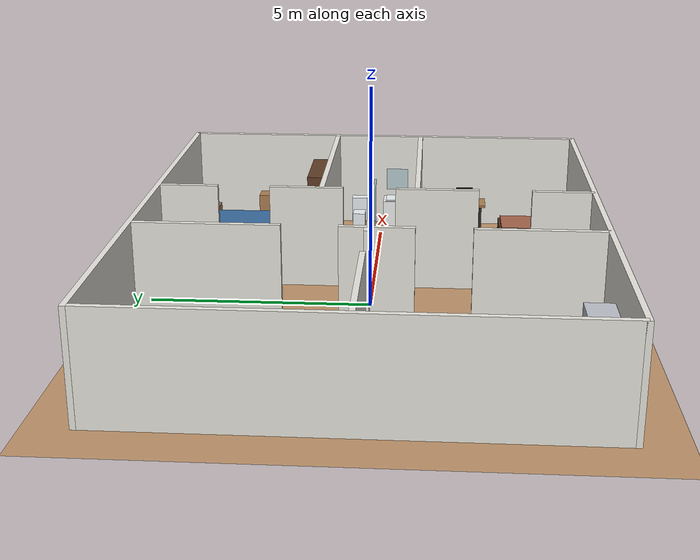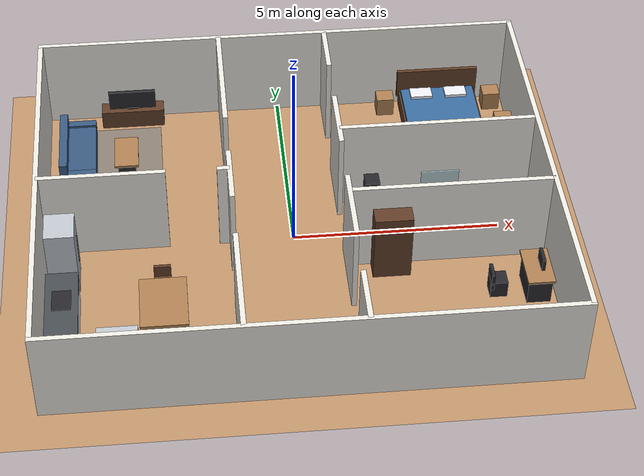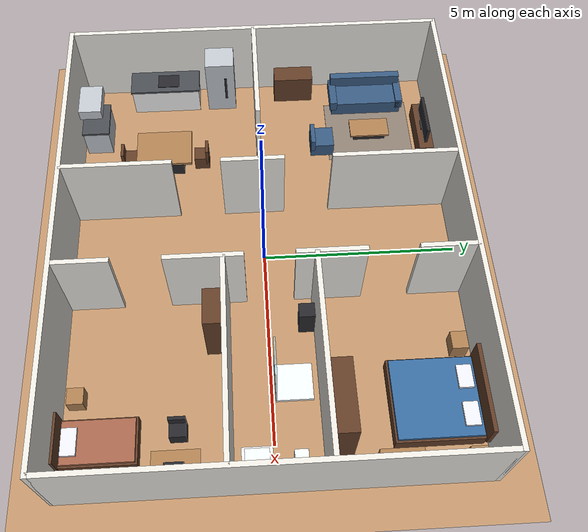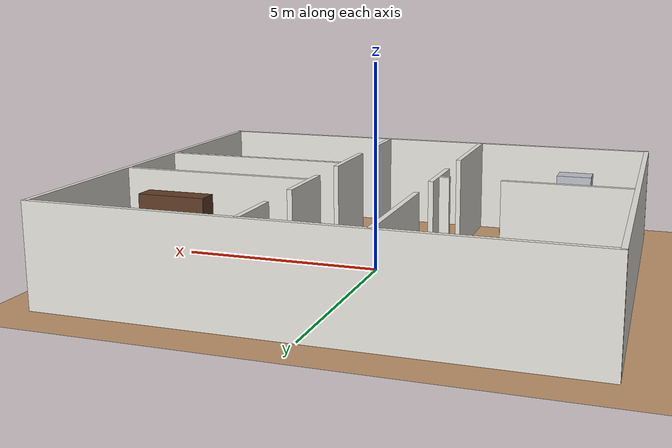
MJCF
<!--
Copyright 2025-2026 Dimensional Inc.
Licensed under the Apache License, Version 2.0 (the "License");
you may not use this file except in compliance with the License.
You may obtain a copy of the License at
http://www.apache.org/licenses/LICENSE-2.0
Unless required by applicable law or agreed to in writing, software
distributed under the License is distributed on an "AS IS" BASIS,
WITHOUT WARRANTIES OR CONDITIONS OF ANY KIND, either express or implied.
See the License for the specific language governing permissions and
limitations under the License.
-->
<!-- House simulation environment for AlohaMini1 navigation: Sala, Dormitorios, Cocina, Baño y Pasillo. -->
<mujoco model="talos_house">
  <compiler angle="radian" autolimits="true"/>
  <option timestep="0.005" gravity="0 0 -9.81" integrator="implicitfast"/>

  <visual>
    <global azimuth="135" elevation="-25"/>
    <map znear="0.0002"/>
    <headlight ambient="0.45 0.45 0.45" diffuse="0.65 0.65 0.65"/>
  </visual>

  <asset>
    <material name="floor_wood" rgba="0.75 0.58 0.42 1"/>
    <material name="floor_tile" rgba="0.82 0.82 0.80 1"/>
    <material name="wall_mat" rgba="0.92 0.91 0.88 1"/>
    <material name="sofa_mat" rgba="0.22 0.35 0.50 1"/>
    <material name="wood_dark" rgba="0.38 0.24 0.15 1"/>
    <material name="wood_light" rgba="0.68 0.50 0.32 1"/>
    <material name="white_mat" rgba="0.95 0.95 0.95 1"/>
    <material name="dark_metal" rgba="0.15 0.15 0.17 1"/>
    <material name="counter_top" rgba="0.28 0.30 0.32 1"/>
    <material name="bed_linen_1" rgba="0.22 0.42 0.62 1"/>
    <material name="bed_linen_2" rgba="0.65 0.40 0.30 1"/>
    <material name="pillow_mat" rgba="0.92 0.92 0.95 1"/>
    <material name="appliance_mat" rgba="0.75 0.77 0.80 1"/>
    <material name="ceramic_mat" rgba="0.93 0.95 0.96 1"/>
    <material name="glass_mat" rgba="0.65 0.80 0.85 0.6"/>
    <material name="rug_mat" rgba="0.55 0.50 0.45 1"/>
  </asset>

  <default>
    <geom condim="3" friction="1 0.01 0.001" solref="0.01 1"/>
  </default>

  <worldbody>
    <light directional="true" pos="0 0 4.5" dir="0 0 -1"/>
    <light directional="true" pos="-3.5 2.5 3.5" dir="0.2 -0.2 -1"/>
    <light directional="true" pos="3.5 -2.5 3.5" dir="-0.2 0.2 -1"/>

    <!-- Floors: Wooden floor for living areas, ceramic floor for kitchen and bathroom -->
    <geom name="floor" type="plane" size="7.0 6.0 0.1" material="floor_wood"/>

    <!-- EXTERIOR WALLS (Bounding Envelope 12m x 10m, Height 2.4m)         -->
    <geom name="wall_north" type="box" pos="0 5.0 1.2" size="6.06 0.06 1.2" material="wall_mat"/>
    <geom name="wall_south" type="box" pos="0 -5.0 1.2" size="6.06 0.06 1.2" material="wall_mat"/>
    <geom name="wall_west" type="box" pos="-6.0 0 1.2" size="0.06 5.0 1.2" material="wall_mat"/>
    <geom name="wall_east" type="box" pos="6.0 0 1.2" size="0.06 5.0 1.2" material="wall_mat"/>

    <!-- INTERIOR WALLS & DOORWAYS (All doorways >= 1.2m wide)              -->
    <!-- West interior wall at X = -1.5 (separating Sala & Cocina from Hallway) -->
    <!-- North segment (Y: 1.8 to 5.0) -->
    <geom name="wall_hall_west_north" type="box" pos="-1.5 3.4 1.2" size="0.06 1.6 1.2" material="wall_mat"/>
    <!-- Doorway to Sala: Y = 0.6 to 1.8 (width 1.2m OPEN) -->
    <!-- Middle segment (Y: -1.0 to 0.6) -->
    <geom name="wall_hall_west_mid" type="box" pos="-1.5 -0.2 1.2" size="0.06 0.8 1.2" material="wall_mat"/>
    <!-- Doorway to Cocina: Y = -2.2 to -1.0 (width 1.2m OPEN) -->
    <!-- South segment (Y: -5.0 to -2.2) -->
    <geom name="wall_hall_west_south" type="box" pos="-1.5 -3.6 1.2" size="0.06 1.4 1.2" material="wall_mat"/>

    <!-- Partition between Sala and Cocina at Y = 0.0 (West side) -->
    <geom name="wall_sala_cocina_west" type="box" pos="-4.5 0.0 1.2" size="1.5 0.06 1.2" material="wall_mat"/>
    <!-- Open passage between Sala & Cocina: X = -3.0 to -1.8 (width 1.2m OPEN) -->
    <geom name="wall_sala_cocina_east" type="box" pos="-1.65 0.0 1.2" size="0.15 0.06 1.2" material="wall_mat"/>

    <!-- East interior wall at X = 1.2 (separating Bedrooms & Bath from Hallway) -->
    <!-- North segment (Y: 3.6 to 5.0) -->
    <geom name="wall_hall_east_north" type="box" pos="1.2 4.3 1.2" size="0.06 0.7 1.2" material="wall_mat"/>
    <!-- Doorway to Dormitorio 1: Y = 2.4 to 3.6 (width 1.2m OPEN) -->
    <!-- Middle-north segment (Y: 0.7 to 2.4) -->
    <geom name="wall_hall_east_midnorth" type="box" pos="1.2 1.55 1.2" size="0.06 0.85 1.2" material="wall_mat"/>
    <!-- Doorway to Baño: Y = -0.5 to 0.7 (width 1.2m OPEN) -->
    <!-- Middle-south segment (Y: -2.4 to -0.5) -->
    <geom name="wall_hall_east_midsouth" type="box" pos="1.2 -1.45 1.2" size="0.06 0.95 1.2" material="wall_mat"/>
    <!-- Doorway to Dormitorio 2: Y = -3.6 to -2.4 (width 1.2m OPEN) -->
    <!-- South segment (Y: -5.0 to -3.6) -->
    <geom name="wall_hall_east_south" type="box" pos="1.2 -4.3 1.2" size="0.06 0.7 1.2" material="wall_mat"/>

    <!-- Partition between Dormitorio 1 and Baño at Y = 1.2 (East side) -->
    <geom name="wall_bed1_bath" type="box" pos="3.6 1.2 1.2" size="2.4 0.06 1.2" material="wall_mat"/>

    <!-- Partition between Baño and Dormitorio 2 at Y = -1.0 (East side) -->
    <geom name="wall_bath_bed2" type="box" pos="3.6 -1.0 1.2" size="2.4 0.06 1.2" material="wall_mat"/>

    <!-- SALA (LIVING ROOM) FURNITURE (X: -6.0 to -1.5, Y: 0.0 to 5.0)     -->
    <!-- Sofá principal -->
    <body name="sofa" pos="-5.2 3.2 0">
      <geom name="sofa_seat" type="box" pos="0 0 0.22" size="0.45 1.0 0.22" material="sofa_mat"/>
      <geom name="sofa_back" type="box" pos="-0.35 0 0.50" size="0.10 1.0 0.28" material="sofa_mat"/>
      <geom name="sofa_arm_left" type="box" pos="0 0.95 0.35" size="0.45 0.10 0.15" material="sofa_mat"/>
      <geom name="sofa_arm_right" type="box" pos="0 -0.95 0.35" size="0.45 0.10 0.15" material="sofa_mat"/>
    </body>

    <!-- Alfombra de sala (visual sutil, sin colisión) -->
    <geom name="sala_rug" type="box" pos="-4.1 3.2 0.005" size="1.0 1.2 0.005" material="rug_mat" contype="0" conaffinity="0"/>

    <!-- Mesa de centro -->
    <body name="coffee_table" pos="-4.0 3.2 0">
      <geom name="coffee_table_top" type="box" pos="0 0 0.25" size="0.30 0.55 0.03" material="wood_light"/>
      <geom name="coffee_table_base" type="box" pos="0 0 0.11" size="0.22 0.45 0.11" material="dark_metal"/>
    </body>

    <!-- Mueble de televisión y Televisor -->
    <body name="tv_unit" pos="-3.8 4.7 0">
      <geom name="tv_stand" type="box" pos="0 0 0.25" size="0.80 0.20 0.25" material="wood_dark"/>
      <geom name="tv_screen" type="box" pos="0 0 0.70" size="0.60 0.04 0.32" material="dark_metal"/>
      <geom name="tv_base" type="box" pos="0 0 0.52" size="0.15 0.08 0.02" material="dark_metal"/>
    </body>

    <!-- Sillón individual -->
    <body name="armchair" pos="-3.6 1.8 0">
      <geom name="armchair_seat" type="box" pos="0 0 0.22" size="0.32 0.32 0.22" material="sofa_mat"/>
      <geom name="armchair_back" type="box" pos="0 -0.26 0.42" size="0.32 0.06 0.20" material="sofa_mat"/>
    </body>

    <!-- Estantería baja -->
    <body name="bookshelf" pos="-5.6 1.1 0">
      <geom name="bookshelf_body" type="box" pos="0 0 0.45" size="0.25 0.55 0.45" material="wood_dark"/>
    </body>

    <!-- COCINA Y COMEDOR (X: -6.0 to -1.5, Y: -5.0 to 0.0)                -->
    <!-- Refrigerador alto -->
    <body name="refrigerator" pos="-5.5 -1.0 0">
      <geom name="fridge_body" type="box" pos="0 0 0.90" size="0.35 0.40 0.90" material="appliance_mat"/>
      <geom name="fridge_handle" type="box" pos="0.36 0.15 0.90" size="0.02 0.03 0.40" material="dark_metal"/>
    </body>

    <!-- Mesada de cocina con lavaplatos -->
    <body name="kitchen_counter" pos="-5.5 -2.6 0">
      <geom name="counter_cabinet" type="box" pos="0 0 0.42" size="0.35 0.95 0.42" material="white_mat"/>
      <geom name="counter_top_geom" type="box" pos="0 0 0.86" size="0.38 0.98 0.03" material="counter_top"/>
      <geom name="kitchen_sink" type="box" pos="0 0.10 0.895" size="0.22 0.30 0.01" material="dark_metal"/>
    </body>

    <!-- Cocina / Estufa -->
    <body name="stove" pos="-4.2 -4.5 0">
      <geom name="stove_body" type="box" pos="0 0 0.42" size="0.50 0.35 0.42" material="appliance_mat"/>
      <geom name="stove_top" type="box" pos="0 0 0.86" size="0.52 0.37 0.03" material="counter_top"/>
      <geom name="range_hood" type="box" pos="0 0 1.60" size="0.45 0.30 0.15" material="appliance_mat"/>
    </body>

    <!-- Mesa de comedor -->
    <body name="dining_table" pos="-3.2 -2.6 0">
      <geom name="dining_table_top" type="box" pos="0 0 0.72" size="0.55 0.75 0.04" material="wood_light"/>
      <geom name="dining_table_leg" type="box" pos="0 0 0.34" size="0.35 0.50 0.34" material="dark_metal"/>
    </body>

    <!-- Sillas de comedor -->
    <body name="dining_chair_north" pos="-3.2 -1.6 0">
      <geom type="box" pos="0 0 0.22" size="0.20 0.20 0.22" material="wood_dark"/>
      <geom type="box" pos="0 0.16 0.48" size="0.20 0.04 0.26" material="wood_dark"/>
    </body>
    <body name="dining_chair_south" pos="-3.2 -3.6 0">
      <geom type="box" pos="0 0 0.22" size="0.20 0.20 0.22" material="wood_dark"/>
      <geom type="box" pos="0 -0.16 0.48" size="0.20 0.04 0.26" material="wood_dark"/>
    </body>

    <!-- DORMITORIO 1 - PRINCIPAL (X: 1.2 to 6.0, Y: 1.2 to 5.0)           -->
    <!-- Cama matrimonial -->
    <body name="bed_master" pos="4.2 3.8 0">
      <geom name="bed_master_base" type="box" pos="0 0 0.20" size="1.0 1.05 0.20" material="wood_dark"/>
      <geom name="bed_master_mattress" type="box" pos="0 0 0.40" size="0.95 1.0 0.10" material="bed_linen_1"/>
      <geom name="bed_master_headboard" type="box" pos="0 1.08 0.65" size="1.05 0.05 0.40" material="wood_dark"/>
      <geom name="pillow_master_left" type="box" pos="-0.45 0.75 0.53" size="0.28 0.18 0.05" material="pillow_mat"/>
      <geom name="pillow_master_right" type="box" pos="0.45 0.75 0.53" size="0.28 0.18 0.05" material="pillow_mat"/>
    </body>

    <!-- Mesas de noche -->
    <body name="nightstand_master_left" pos="2.8 4.6 0">
      <geom type="box" pos="0 0 0.25" size="0.22 0.20 0.25" material="wood_light"/>
    </body>
    <body name="nightstand_master_right" pos="5.6 4.6 0">
      <geom type="box" pos="0 0 0.25" size="0.22 0.20 0.25" material="wood_light"/>
    </body>

    <!-- Clóset / Ropero grande -->
    <body name="wardrobe_master" pos="4.5 1.55 0">
      <geom name="wardrobe_master_body" type="box" pos="0 0 0.95" size="0.85 0.25 0.95" material="wood_dark"/>
    </body>

    <!-- Cómoda / Mueble auxiliar -->
    <body name="dresser_master" pos="5.65 2.8 0">
      <geom name="dresser_body" type="box" pos="0 0 0.42" size="0.22 0.50 0.42" material="wood_light"/>
    </body>

    <!-- BAÑO (BATHROOM) (X: 1.2 to 6.0, Y: -1.0 to 1.2)                   -->
    <!-- Inodoro -->
    <body name="toilet" pos="5.5 0.6 0">
      <geom name="toilet_tank" type="box" pos="0.22 0 0.45" size="0.12 0.20 0.32" material="ceramic_mat"/>
      <geom name="toilet_bowl" type="box" pos="-0.08 0 0.22" size="0.20 0.16 0.22" material="ceramic_mat"/>
    </body>

    <!-- Lavamanos / Mueble de baño -->
    <body name="bathroom_vanity" pos="5.5 -0.4 0">
      <geom name="vanity_body" type="box" pos="0 0 0.40" size="0.28 0.35 0.40" material="white_mat"/>
      <geom name="vanity_sink" type="box" pos="0 0 0.81" size="0.24 0.28 0.02" material="ceramic_mat"/>
      <!-- Espejo (decorativo) -->
      <geom name="bathroom_mirror" type="box" pos="0.32 0 1.25" size="0.02 0.28 0.28" material="glass_mat" contype="0" conaffinity="0"/>
    </body>

    <!-- Ducha con plato y mampara -->
    <body name="shower" pos="3.5 0.55 0">
      <geom name="shower_tray" type="box" pos="0 0 0.05" size="0.45 0.45 0.05" material="ceramic_mat"/>
      <geom name="shower_glass" type="box" pos="0 -0.45 0.95" size="0.45 0.02 0.85" material="glass_mat"/>
    </body>

    <!-- Estante de toallas -->
    <body name="towel_rack" pos="2.0 1.0 0">
      <geom type="box" pos="0 0 0.45" size="0.18 0.25 0.45" material="dark_metal"/>
    </body>

    <!-- DORMITORIO 2 - SECUNDARIO / ESTUDIO (X: 1.2 to 6.0, Y: -5.0 to -1.0) -->
    <!-- Cama individual -->
    <body name="bed_single" pos="4.8 -4.0 0">
      <geom name="bed_single_base" type="box" pos="0 0 0.18" size="0.55 0.90 0.18" material="wood_dark"/>
      <geom name="bed_single_mattress" type="box" pos="0 0 0.36" size="0.50 0.85 0.09" material="bed_linen_2"/>
      <geom name="bed_single_headboard" type="box" pos="0 -0.92 0.55" size="0.58 0.04 0.35" material="wood_dark"/>
      <geom name="pillow_single" type="box" pos="0 -0.65 0.48" size="0.32 0.18 0.05" material="pillow_mat"/>
    </body>

    <!-- Mesa de noche individual -->
    <body name="nightstand_single" pos="3.7 -4.6 0">
      <geom type="box" pos="0 0 0.22" size="0.20 0.20 0.22" material="wood_light"/>
    </body>

    <!-- Escritorio de estudio con monitor -->
    <body name="study_desk" pos="5.5 -2.2 0">
      <geom name="study_desk_top" type="box" pos="0 0 0.72" size="0.32 0.55 0.03" material="wood_light"/>
      <geom name="study_desk_legs" type="box" pos="0 0 0.34" size="0.28 0.45 0.34" material="dark_metal"/>
      <geom name="monitor_screen" type="box" pos="0.08 0 0.95" size="0.04 0.22 0.16" material="dark_metal"/>
    </body>

    <!-- Silla de escritorio -->
    <body name="study_chair" pos="4.6 -2.2 0">
      <geom type="box" pos="0 0 0.22" size="0.20 0.20 0.22" material="dark_metal"/>
      <geom type="box" pos="-0.16 0 0.46" size="0.04 0.20 0.24" material="dark_metal"/>
    </body>

    <!-- Armario / Clóset secundario -->
    <body name="wardrobe_single" pos="2.2 -1.3 0">
      <geom name="wardrobe_single_body" type="box" pos="0 0 0.90" size="0.45 0.22 0.90" material="wood_dark"/>
    </body>

  </worldbody>
</mujoco>
